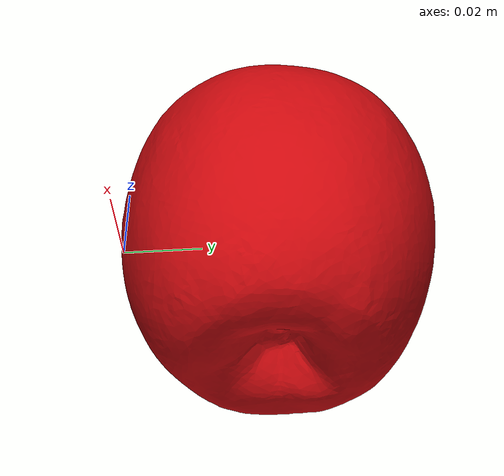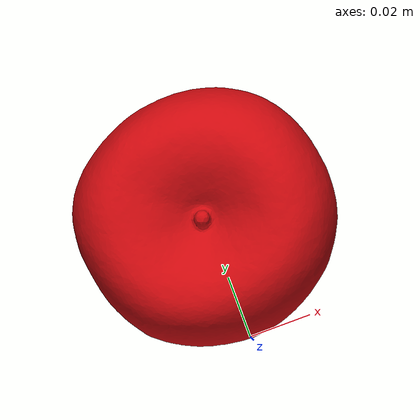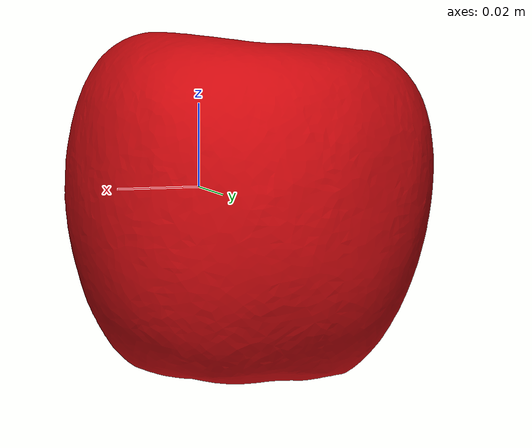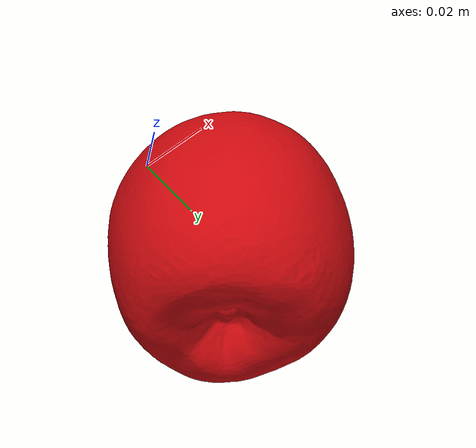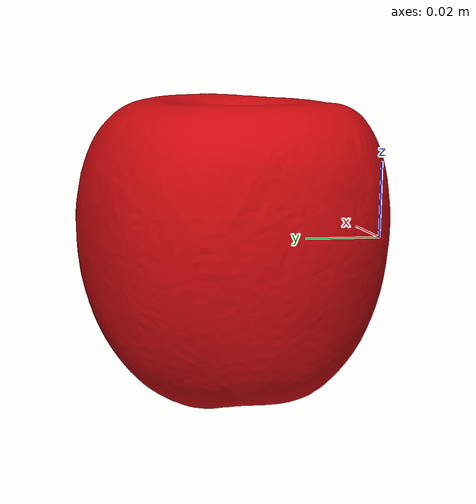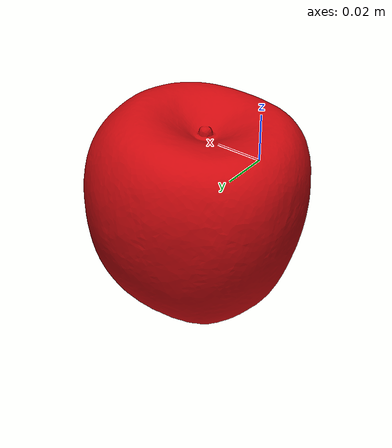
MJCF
<mujoco model="035_apple">
  <asset>
    <mesh name="035_apple_visual" file="035_apple_visual.obj"/>
    <mesh name="035_apple_collision" file="035_apple_collision.stl"/>

    <material name="035_apple_mat" rgba="0.8 0.03529 0.0549 1"/>
  </asset>
  <worldbody>
    <body name="035_apple" pos="0 0 0">
      <freejoint/>
      <geom type="mesh" mesh="035_apple_visual" material="035_apple_mat"
            mass="0.147" contype="0" conaffinity="0"/>
      <geom type="mesh" mesh="035_apple_collision" mass="0"
            contype="1" conaffinity="1"
            friction="0.5 .005 0.01"
            rgba="0 0 0 0"/>
    </body>
  </worldbody>
</mujoco>
